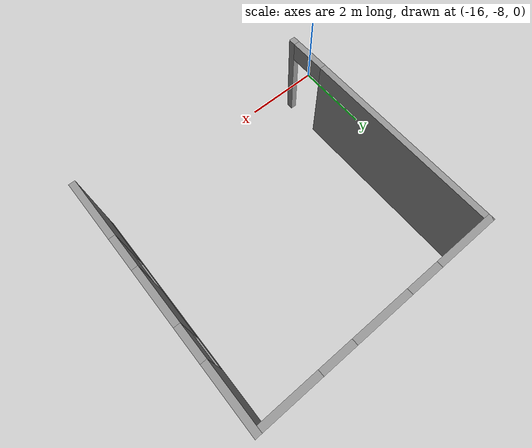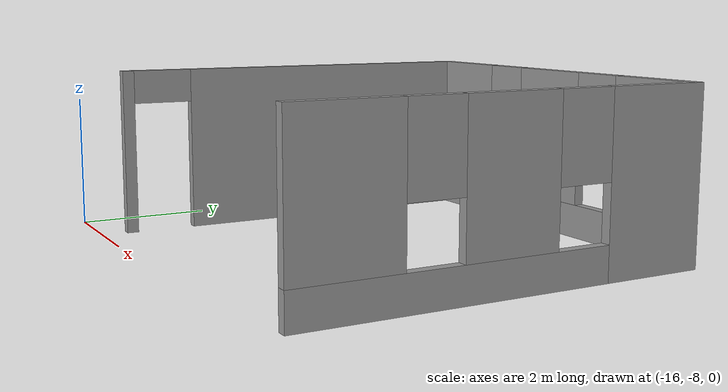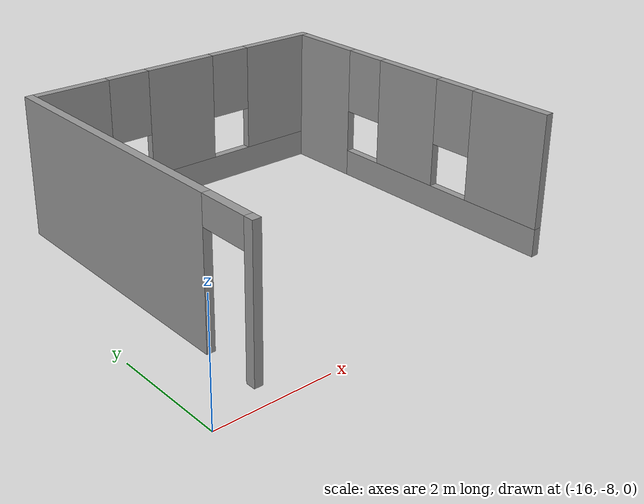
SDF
<?xml version='1.0'?>
<sdf version='1.7'>
  <model name='Room'>
    <pose>-7.5125 -3.8075 0 0 -0 0</pose>
    <link name='Wall_1'>
      <pose>-7.4375 -0.8075 0 0 -0 1.5708</pose>
      <visual name='Wall_1_Visual_0'>
        <pose>-2.9125 0 1.25 0 -0 0</pose>
        <geometry>
          <box>
            <size>0.175 0.15 2.5</size>
          </box>
        </geometry>
        <material>
          <script>
            <uri>file://media/materials/scripts/gazebo.material</uri>
            <name>Gazebo/Grey</name>
          </script>
          <ambient>1 1 1 1</ambient>
        </material>
        <meta>
          <layer>0</layer>
        </meta>
      </visual>
      <collision name='Wall_1_Collision_0'>
        <geometry>
          <box>
            <size>0.175 0.15 2.5</size>
          </box>
        </geometry>
        <pose>-2.9125 0 1.25 0 -0 0</pose>
      </collision>
      <visual name='Wall_1_Visual_1'>
        <pose>0.5375 0 1.25 0 -0 0</pose>
        <geometry>
          <box>
            <size>4.925 0.15 2.5</size>
          </box>
        </geometry>
        <material>
          <script>
            <uri>file://media/materials/scripts/gazebo.material</uri>
            <name>Gazebo/Grey</name>
          </script>
          <ambient>1 1 1 1</ambient>
        </material>
        <meta>
          <layer>0</layer>
        </meta>
      </visual>
      <collision name='Wall_1_Collision_1'>
        <geometry>
          <box>
            <size>4.925 0.15 2.5</size>
          </box>
        </geometry>
        <pose>0.5375 0 1.25 0 -0 0</pose>
      </collision>
      <visual name='Wall_1_Visual_2'>
        <pose>-2.375 0 2.25 0 -0 0</pose>
        <geometry>
          <box>
            <size>0.9 0.15 0.5</size>
          </box>
        </geometry>
        <material>
          <script>
            <uri>file://media/materials/scripts/gazebo.material</uri>
            <name>Gazebo/Grey</name>
          </script>
          <ambient>1 1 1 1</ambient>
        </material>
        <meta>
          <layer>0</layer>
        </meta>
      </visual>
      <collision name='Wall_1_Collision_2'>
        <geometry>
          <box>
            <size>0.9 0.15 0.5</size>
          </box>
        </geometry>
        <pose>-2.375 0 2.25 0 -0 0</pose>
      </collision>
    </link>
    <link name='Wall_2'>
      <pose>-4.5125 2.1175 0 0 -0 0</pose>
      <visual name='Wall_2_Visual_0'>
        <pose>-2.2475 0 1.25 0 -0 0</pose>
        <geometry>
          <box>
            <size>1.505 0.15 2.5</size>
          </box>
        </geometry>
        <material>
          <script>
            <uri>file://media/materials/scripts/gazebo.material</uri>
            <name>Gazebo/Grey</name>
          </script>
          <ambient>1 1 1 1</ambient>
        </material>
        <meta>
          <layer>0</layer>
        </meta>
      </visual>
      <collision name='Wall_2_Collision_0'>
        <geometry>
          <box>
            <size>1.505 0.15 2.5</size>
          </box>
        </geometry>
        <pose>-2.2475 0 1.25 0 -0 0</pose>
      </collision>
      <visual name='Wall_2_Visual_1'>
        <pose>0.7525 0 0.25 0 -0 0</pose>
        <geometry>
          <box>
            <size>4.495 0.15 0.5</size>
          </box>
        </geometry>
        <material>
          <script>
            <uri>file://media/materials/scripts/gazebo.material</uri>
            <name>Gazebo/Grey</name>
          </script>
          <ambient>1 1 1 1</ambient>
        </material>
        <meta>
          <layer>0</layer>
        </meta>
      </visual>
      <collision name='Wall_2_Collision_1'>
        <geometry>
          <box>
            <size>4.495 0.15 0.5</size>
          </box>
        </geometry>
        <pose>0.7525 0 0.25 0 -0 0</pose>
      </collision>
      <visual name='Wall_2_Visual_2'>
        <pose>-0 0 1.5 0 -0 0</pose>
        <geometry>
          <box>
            <size>1.39 0.15 2</size>
          </box>
        </geometry>
        <material>
          <script>
            <uri>file://media/materials/scripts/gazebo.material</uri>
            <name>Gazebo/Grey</name>
          </script>
          <ambient>1 1 1 1</ambient>
        </material>
        <meta>
          <layer>0</layer>
        </meta>
      </visual>
      <collision name='Wall_2_Collision_2'>
        <geometry>
          <box>
            <size>1.39 0.15 2</size>
          </box>
        </geometry>
        <pose>-0 0 1.5 0 -0 0</pose>
      </collision>
      <visual name='Wall_2_Visual_3'>
        <pose>2.2475 0 1.5 0 -0 0</pose>
        <geometry>
          <box>
            <size>1.505 0.15 2</size>
          </box>
        </geometry>
        <material>
          <script>
            <uri>file://media/materials/scripts/gazebo.material</uri>
            <name>Gazebo/Grey</name>
          </script>
          <ambient>1 1 1 1</ambient>
        </material>
        <meta>
          <layer>0</layer>
        </meta>
      </visual>
      <collision name='Wall_2_Collision_3'>
        <geometry>
          <box>
            <size>1.505 0.15 2</size>
          </box>
        </geometry>
        <pose>2.2475 0 1.5 0 -0 0</pose>
      </collision>
      <visual name='Wall_2_Visual_4'>
        <pose>-1.095 0 1.9 0 -0 0</pose>
        <geometry>
          <box>
            <size>0.8 0.15 1.2</size>
          </box>
        </geometry>
        <material>
          <script>
            <uri>file://media/materials/scripts/gazebo.material</uri>
            <name>Gazebo/Grey</name>
          </script>
          <ambient>1 1 1 1</ambient>
        </material>
        <meta>
          <layer>0</layer>
        </meta>
      </visual>
      <collision name='Wall_2_Collision_4'>
        <geometry>
          <box>
            <size>0.8 0.15 1.2</size>
          </box>
        </geometry>
        <pose>-1.095 0 1.9 0 -0 0</pose>
      </collision>
      <visual name='Wall_2_Visual_5'>
        <pose>1.095 0 1.9 0 -0 0</pose>
        <geometry>
          <box>
            <size>0.8 0.15 1.2</size>
          </box>
        </geometry>
        <material>
          <script>
            <uri>file://media/materials/scripts/gazebo.material</uri>
            <name>Gazebo/Grey</name>
          </script>
          <ambient>1 1 1 1</ambient>
        </material>
        <meta>
          <layer>0</layer>
        </meta>
      </visual>
      <collision name='Wall_2_Collision_5'>
        <geometry>
          <box>
            <size>0.8 0.15 1.2</size>
          </box>
        </geometry>
        <pose>1.095 0 1.9 0 -0 0</pose>
      </collision>
    </link>
    <link name='Wall_4'>
      <pose>-1.5875 -0.8075 0 0 -0 -1.5708</pose>
      <visual name='Wall_4_Visual_0'>
        <pose>-2.2425 0 1.25 0 -0 0</pose>
        <geometry>
          <box>
            <size>1.515 0.15 2.5</size>
          </box>
        </geometry>
        <material>
          <script>
            <uri>file://media/materials/scripts/gazebo.material</uri>
            <name>Gazebo/Grey</name>
          </script>
          <ambient>1 1 1 1</ambient>
        </material>
        <meta>
          <layer>0</layer>
        </meta>
      </visual>
      <collision name='Wall_4_Collision_0'>
        <geometry>
          <box>
            <size>1.515 0.15 2.5</size>
          </box>
        </geometry>
        <pose>-2.2425 0 1.25 0 -0 0</pose>
      </collision>
      <visual name='Wall_4_Visual_1'>
        <pose>0.7575 0 0.25 0 -0 0</pose>
        <geometry>
          <box>
            <size>4.485 0.15 0.5</size>
          </box>
        </geometry>
        <material>
          <script>
            <uri>file://media/materials/scripts/gazebo.material</uri>
            <name>Gazebo/Grey</name>
          </script>
          <ambient>1 1 1 1</ambient>
        </material>
        <meta>
          <layer>0</layer>
        </meta>
      </visual>
      <collision name='Wall_4_Collision_1'>
        <geometry>
          <box>
            <size>4.485 0.15 0.5</size>
          </box>
        </geometry>
        <pose>0.7575 0 0.25 0 -0 0</pose>
      </collision>
      <visual name='Wall_4_Visual_2'>
        <pose>0 0 1.5 0 -0 0</pose>
        <geometry>
          <box>
            <size>1.37 0.15 2</size>
          </box>
        </geometry>
        <material>
          <script>
            <uri>file://media/materials/scripts/gazebo.material</uri>
            <name>Gazebo/Grey</name>
          </script>
          <ambient>1 1 1 1</ambient>
        </material>
        <meta>
          <layer>0</layer>
        </meta>
      </visual>
      <collision name='Wall_4_Collision_2'>
        <geometry>
          <box>
            <size>1.37 0.15 2</size>
          </box>
        </geometry>
        <pose>0 0 1.5 0 -0 0</pose>
      </collision>
      <visual name='Wall_4_Visual_3'>
        <pose>2.2425 0 1.5 0 -0 0</pose>
        <geometry>
          <box>
            <size>1.515 0.15 2</size>
          </box>
        </geometry>
        <material>
          <script>
            <uri>file://media/materials/scripts/gazebo.material</uri>
            <name>Gazebo/Grey</name>
          </script>
          <ambient>1 1 1 1</ambient>
        </material>
        <meta>
          <layer>0</layer>
        </meta>
      </visual>
      <collision name='Wall_4_Collision_3'>
        <geometry>
          <box>
            <size>1.515 0.15 2</size>
          </box>
        </geometry>
        <pose>2.2425 0 1.5 0 -0 0</pose>
      </collision>
      <visual name='Wall_4_Visual_4'>
        <pose>-1.085 0 1.9 0 -0 0</pose>
        <geometry>
          <box>
            <size>0.8 0.15 1.2</size>
          </box>
        </geometry>
        <material>
          <script>
            <uri>file://media/materials/scripts/gazebo.material</uri>
            <name>Gazebo/Grey</name>
          </script>
          <ambient>1 1 1 1</ambient>
        </material>
        <meta>
          <layer>0</layer>
        </meta>
      </visual>
      <collision name='Wall_4_Collision_4'>
        <geometry>
          <box>
            <size>0.8 0.15 1.2</size>
          </box>
        </geometry>
        <pose>-1.085 0 1.9 0 -0 0</pose>
      </collision>
      <visual name='Wall_4_Visual_5'>
        <pose>1.085 0 1.9 0 -0 0</pose>
        <geometry>
          <box>
            <size>0.8 0.15 1.2</size>
          </box>
        </geometry>
        <material>
          <script>
            <uri>file://media/materials/scripts/gazebo.material</uri>
            <name>Gazebo/Grey</name>
          </script>
          <ambient>1 1 1 1</ambient>
        </material>
        <meta>
          <layer>0</layer>
        </meta>
      </visual>
      <collision name='Wall_4_Collision_5'>
        <geometry>
          <box>
            <size>0.8 0.15 1.2</size>
          </box>
        </geometry>
        <pose>1.085 0 1.9 0 -0 0</pose>
      </collision>
    </link>
    <static>1</static>
  </model>
</sdf>
